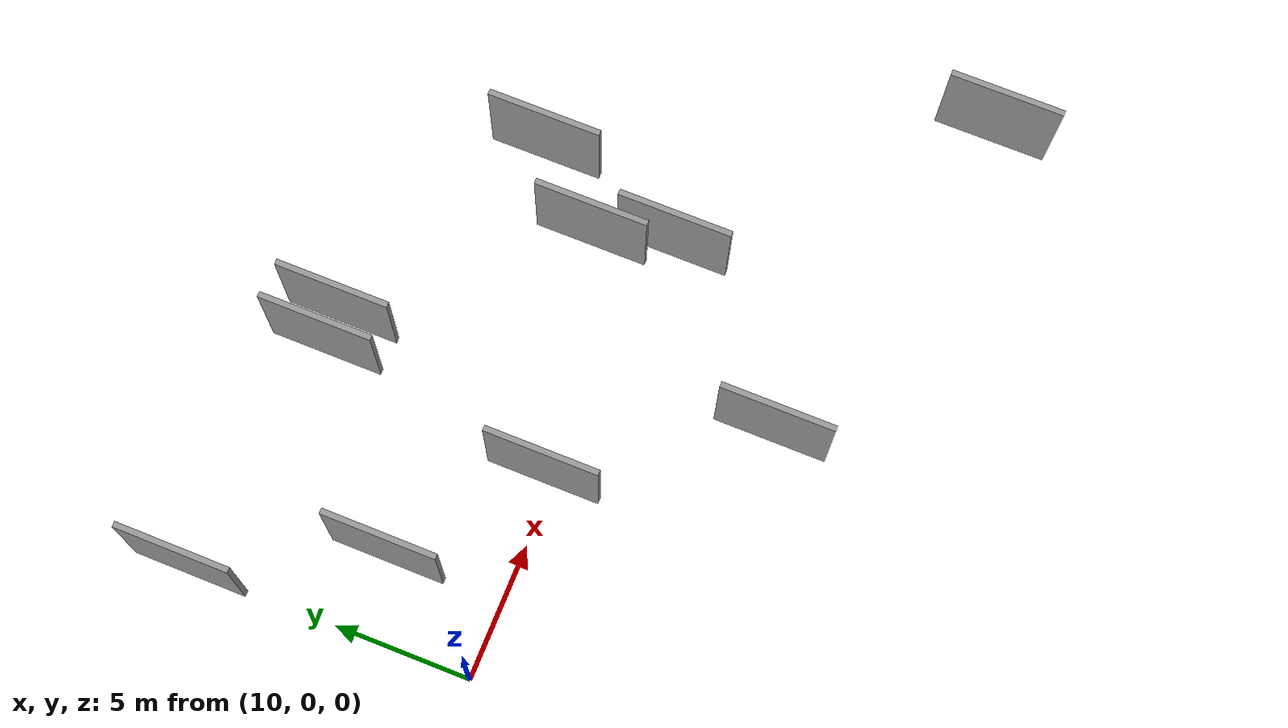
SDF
<sdf version="1.6">
 <world name="default">
  <scene>
   <sky><clouds><speed>12</speed></clouds></sky>
   <ambient>0.4 0.4 0.4 1</ambient>
   <background>0.7 0.7 0.7 1</background>
   <shadows>1</shadows>
  </scene>
  <gravity>0 0 -9.8066</gravity>
  <magnetic_field>6e-06 2.3e-05 -4.2e-05</magnetic_field>
  <physics default="0" name="default_physics" type="ode">
   <ode>
    <solver>
     <type>quick</type>
     <iters>10</iters>
     <sor>1.0</sor>
     <use_dynamic_moi_rescaling>0</use_dynamic_moi_rescaling>
    </solver>
    <constraints>
     <cfm>0</cfm>
     <erp>0.2</erp>
     <contact_max_correcting_vel>100</contact_max_correcting_vel>
     <contact_surface_layer>0.001</contact_surface_layer>
    </constraints>
   </ode>
   <max_step_size>0.004</max_step_size>
   <real_time_factor>1</real_time_factor>
   <real_time_update_rate>250</real_time_update_rate>
  </physics>
  <light name="sun" type="directional">
   <pose>0 0 10 0 0 0</pose>
   <diffuse>0.8 0.8 0.8 1</diffuse>
   <specular>0.2 0.2 0.2 1</specular>
   <attenuation>
    <range>1000</range>
    <constant>0.9</constant>
    <linear>0.01</linear>
    <quadratic>0.001</quadratic>
   </attenuation>
   <direction>-0.5 0.1 -0.9</direction>
  </light>
  <model name="grey_wall_1">
   <static>1</static>
   <pose>12.4285 3.8125 2.5 0.000000 0.000000 1.570796</pose>
   <link name="link">
    <pose>0 0 2.00 0 0 0</pose>
    <collision name="collision"><geometry><box><size>4.00 0.2 4.00</size></box></geometry></collision>
    <visual name="visual">
     <cast_shadows>0</cast_shadows>
     <geometry><box><size>4.00 0.2 4.00</size></box></geometry>
     <material>
      <script>
       <uri>model://grey_wall/materials/scripts</uri>
       <uri>model://grey_wall/materials/textures</uri>
       <name>vrc/grey_wall</name>
      </script>
     </material>
    </visual>
   </link>
  </model>
  <model name="grey_wall_2">
   <static>1</static>
   <pose>16.8713 0.0595 2.5 0.000000 0.000000 1.570796</pose>
   <link name="link">
    <pose>0 0 2.00 0 0 0</pose>
    <collision name="collision"><geometry><box><size>4.00 0.2 4.00</size></box></geometry></collision>
    <visual name="visual">
     <cast_shadows>0</cast_shadows>
     <geometry><box><size>4.00 0.2 4.00</size></box></geometry>
     <material>
      <script>
       <uri>model://grey_wall/materials/scripts</uri>
       <uri>model://grey_wall/materials/textures</uri>
       <name>vrc/grey_wall</name>
      </script>
     </material>
    </visual>
   </link>
  </model>
  <model name="grey_wall_3">
   <static>1</static>
   <pose>25.9802 -0.9817 2.5 0.000000 0.000000 1.570796</pose>
   <link name="link">
    <pose>0 0 2.00 0 0 0</pose>
    <collision name="collision"><geometry><box><size>4.00 0.2 4.00</size></box></geometry></collision>
    <visual name="visual">
     <cast_shadows>0</cast_shadows>
     <geometry><box><size>4.00 0.2 4.00</size></box></geometry>
     <material>
      <script>
       <uri>model://grey_wall/materials/scripts</uri>
       <uri>model://grey_wall/materials/textures</uri>
       <name>vrc/grey_wall</name>
      </script>
     </material>
    </visual>
   </link>
  </model>
  <model name="grey_wall_4">
   <static>1</static>
   <pose>25.3033 1.7320 2.5 0.000000 0.000000 1.570796</pose>
   <link name="link">
    <pose>0 0 2.00 0 0 0</pose>
    <collision name="collision"><geometry><box><size>4.00 0.2 4.00</size></box></geometry></collision>
    <visual name="visual">
     <cast_shadows>0</cast_shadows>
     <geometry><box><size>4.00 0.2 4.00</size></box></geometry>
     <material>
      <script>
       <uri>model://grey_wall/materials/scripts</uri>
       <uri>model://grey_wall/materials/textures</uri>
       <name>vrc/grey_wall</name>
      </script>
     </material>
    </visual>
   </link>
  </model>
  <model name="grey_wall_5">
   <static>1</static>
   <pose>19.5223 8.5459 2.5 0.000000 0.000000 1.570796</pose>
   <link name="link">
    <pose>0 0 2.00 0 0 0</pose>
    <collision name="collision"><geometry><box><size>4.00 0.2 4.00</size></box></geometry></collision>
    <visual name="visual">
     <cast_shadows>0</cast_shadows>
     <geometry><box><size>4.00 0.2 4.00</size></box></geometry>
     <material>
      <script>
       <uri>model://grey_wall/materials/scripts</uri>
       <uri>model://grey_wall/materials/textures</uri>
       <name>vrc/grey_wall</name>
      </script>
     </material>
    </visual>
   </link>
  </model>
  <model name="grey_wall_6">
   <static>1</static>
   <pose>18.2919 8.6062 2.5 0.000000 0.000000 1.570796</pose>
   <link name="link">
    <pose>0 0 2.00 0 0 0</pose>
    <collision name="collision"><geometry><box><size>4.00 0.2 4.00</size></box></geometry></collision>
    <visual name="visual">
     <cast_shadows>0</cast_shadows>
     <geometry><box><size>4.00 0.2 4.00</size></box></geometry>
     <material>
      <script>
       <uri>model://grey_wall/materials/scripts</uri>
       <uri>model://grey_wall/materials/textures</uri>
       <name>vrc/grey_wall</name>
      </script>
     </material>
    </visual>
   </link>
  </model>
  <model name="grey_wall_7">
   <static>1</static>
   <pose>21.0626 -6.4704 2.5 0.000000 0.000000 1.570796</pose>
   <link name="link">
    <pose>0 0 2.00 0 0 0</pose>
    <collision name="collision"><geometry><box><size>4.00 0.2 4.00</size></box></geometry></collision>
    <visual name="visual">
     <cast_shadows>0</cast_shadows>
     <geometry><box><size>4.00 0.2 4.00</size></box></geometry>
     <material>
      <script>
       <uri>model://grey_wall/materials/scripts</uri>
       <uri>model://grey_wall/materials/textures</uri>
       <name>vrc/grey_wall</name>
      </script>
     </material>
    </visual>
   </link>
  </model>
  <model name="grey_wall_8">
   <static>1</static>
   <pose>34.1027 -9.7545 2.5 0.000000 0.000000 1.570796</pose>
   <link name="link">
    <pose>0 0 2.00 0 0 0</pose>
    <collision name="collision"><geometry><box><size>4.00 0.2 4.00</size></box></geometry></collision>
    <visual name="visual">
     <cast_shadows>0</cast_shadows>
     <geometry><box><size>4.00 0.2 4.00</size></box></geometry>
     <material>
      <script>
       <uri>model://grey_wall/materials/scripts</uri>
       <uri>model://grey_wall/materials/textures</uri>
       <name>vrc/grey_wall</name>
      </script>
     </material>
    </visual>
   </link>
  </model>
  <model name="grey_wall_9">
   <static>1</static>
   <pose>9.5889 9.7216 2.5 0.000000 0.000000 1.570796</pose>
   <link name="link">
    <pose>0 0 2.00 0 0 0</pose>
    <collision name="collision"><geometry><box><size>4.00 0.2 4.00</size></box></geometry></collision>
    <visual name="visual">
     <cast_shadows>0</cast_shadows>
     <geometry><box><size>4.00 0.2 4.00</size></box></geometry>
     <material>
      <script>
       <uri>model://grey_wall/materials/scripts</uri>
       <uri>model://grey_wall/materials/textures</uri>
       <name>vrc/grey_wall</name>
      </script>
     </material>
    </visual>
   </link>
  </model>
  <model name="grey_wall_10">
   <static>1</static>
   <pose>27.6705 4.3765 2.5 0.000000 0.000000 1.570796</pose>
   <link name="link">
    <pose>0 0 2.00 0 0 0</pose>
    <collision name="collision"><geometry><box><size>4.00 0.2 4.00</size></box></geometry></collision>
    <visual name="visual">
     <cast_shadows>0</cast_shadows>
     <geometry><box><size>4.00 0.2 4.00</size></box></geometry>
     <material>
      <script>
       <uri>model://grey_wall/materials/scripts</uri>
       <uri>model://grey_wall/materials/textures</uri>
       <name>vrc/grey_wall</name>
      </script>
     </material>
    </visual>
   </link>
  </model>
 </world>
</sdf>
